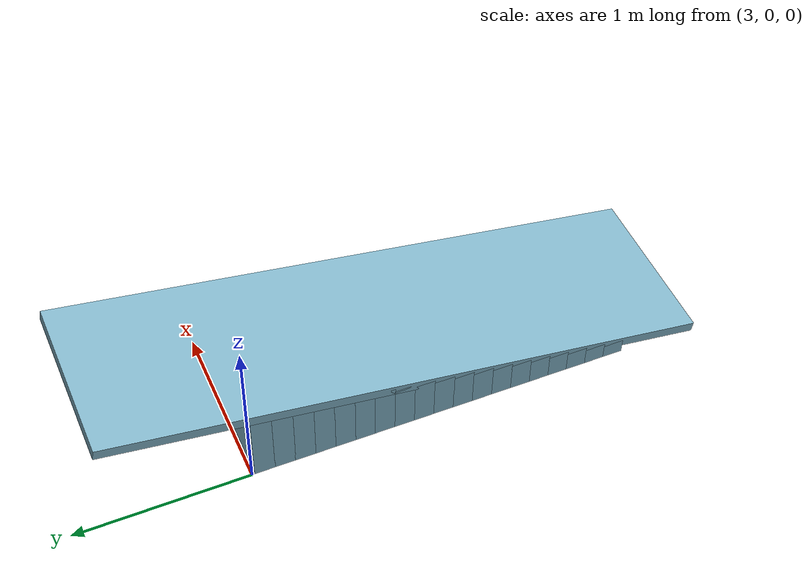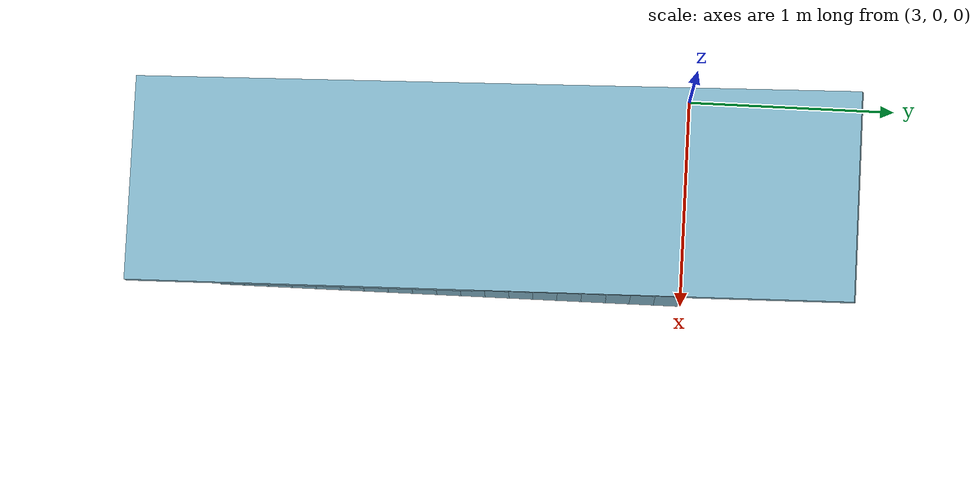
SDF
<sdf version="1.7">
 <world name="robocon2027_arena">
  <model name="ramp_blue">
   <static>1</static>
   <pose>3.5 -0.95 0.3 0 -0.169778 1.5708</pose>
   <link name="link">
    <collision name="col"><geometry><box><size>3.55 1 0.06</size></box></geometry></collision>
    <visual name="vis">
     <geometry><box><size>3.55 1 0.06</size></box></geometry>
     <material>
      <ambient>0.51 0.706 0.784 1</ambient>
      <diffuse>0.51 0.706 0.784 1</diffuse>
      <specular>0.04 0.04 0.04 1</specular>
      <emissive>0 0 0 1</emissive>
     </material>
    </visual>
   </link>
  </model>
  <model name="rampsup_blue_4">
   <static>1</static>
   <pose>3.5 -2.175 0.045 0 -0 0</pose>
   <link name="link">
    <collision name="col"><geometry><box><size>1 0.118667 0.09</size></box></geometry></collision>
    <visual name="vis">
     <geometry><box><size>1 0.118667 0.09</size></box></geometry>
     <material>
      <ambient>0.51 0.706 0.784 1</ambient>
      <diffuse>0.51 0.706 0.784 1</diffuse>
      <specular>0.04 0.04 0.04 1</specular>
      <emissive>0 0 0 1</emissive>
     </material>
    </visual>
   </link>
  </model>
  <model name="rampsup_blue_5">
   <static>1</static>
   <pose>3.5 -2.0583 0.055 0 -0 0</pose>
   <link name="link">
    <collision name="col"><geometry><box><size>1 0.118667 0.11</size></box></geometry></collision>
    <visual name="vis">
     <geometry><box><size>1 0.118667 0.11</size></box></geometry>
     <material>
      <ambient>0.51 0.706 0.784 1</ambient>
      <diffuse>0.51 0.706 0.784 1</diffuse>
      <specular>0.04 0.04 0.04 1</specular>
      <emissive>0 0 0 1</emissive>
     </material>
    </visual>
   </link>
  </model>
  <model name="rampsup_blue_6">
   <static>1</static>
   <pose>3.5 -1.9417 0.065 0 -0 0</pose>
   <link name="link">
    <collision name="col"><geometry><box><size>1 0.118667 0.13</size></box></geometry></collision>
    <visual name="vis">
     <geometry><box><size>1 0.118667 0.13</size></box></geometry>
     <material>
      <ambient>0.51 0.706 0.784 1</ambient>
      <diffuse>0.51 0.706 0.784 1</diffuse>
      <specular>0.04 0.04 0.04 1</specular>
      <emissive>0 0 0 1</emissive>
     </material>
    </visual>
   </link>
  </model>
  <model name="rampsup_blue_7">
   <static>1</static>
   <pose>3.5 -1.825 0.075 0 -0 0</pose>
   <link name="link">
    <collision name="col"><geometry><box><size>1 0.118667 0.15</size></box></geometry></collision>
    <visual name="vis">
     <geometry><box><size>1 0.118667 0.15</size></box></geometry>
     <material>
      <ambient>0.51 0.706 0.784 1</ambient>
      <diffuse>0.51 0.706 0.784 1</diffuse>
      <specular>0.04 0.04 0.04 1</specular>
      <emissive>0 0 0 1</emissive>
     </material>
    </visual>
   </link>
  </model>
  <model name="rampsup_blue_8">
   <static>1</static>
   <pose>3.5 -1.7083 0.085 0 -0 0</pose>
   <link name="link">
    <collision name="col"><geometry><box><size>1 0.118667 0.17</size></box></geometry></collision>
    <visual name="vis">
     <geometry><box><size>1 0.118667 0.17</size></box></geometry>
     <material>
      <ambient>0.51 0.706 0.784 1</ambient>
      <diffuse>0.51 0.706 0.784 1</diffuse>
      <specular>0.04 0.04 0.04 1</specular>
      <emissive>0 0 0 1</emissive>
     </material>
    </visual>
   </link>
  </model>
  <model name="rampsup_blue_9">
   <static>1</static>
   <pose>3.5 -1.5917 0.095 0 -0 0</pose>
   <link name="link">
    <collision name="col"><geometry><box><size>1 0.118667 0.19</size></box></geometry></collision>
    <visual name="vis">
     <geometry><box><size>1 0.118667 0.19</size></box></geometry>
     <material>
      <ambient>0.51 0.706 0.784 1</ambient>
      <diffuse>0.51 0.706 0.784 1</diffuse>
      <specular>0.04 0.04 0.04 1</specular>
      <emissive>0 0 0 1</emissive>
     </material>
    </visual>
   </link>
  </model>
  <model name="rampsup_blue_10">
   <static>1</static>
   <pose>3.5 -1.475 0.105 0 -0 0</pose>
   <link name="link">
    <collision name="col"><geometry><box><size>1 0.118667 0.21</size></box></geometry></collision>
    <visual name="vis">
     <geometry><box><size>1 0.118667 0.21</size></box></geometry>
     <material>
      <ambient>0.51 0.706 0.784 1</ambient>
      <diffuse>0.51 0.706 0.784 1</diffuse>
      <specular>0.04 0.04 0.04 1</specular>
      <emissive>0 0 0 1</emissive>
     </material>
    </visual>
   </link>
  </model>
  <model name="rampsup_blue_11">
   <static>1</static>
   <pose>3.5 -1.3583 0.115 0 -0 0</pose>
   <link name="link">
    <collision name="col"><geometry><box><size>1 0.118667 0.23</size></box></geometry></collision>
    <visual name="vis">
     <geometry><box><size>1 0.118667 0.23</size></box></geometry>
     <material>
      <ambient>0.51 0.706 0.784 1</ambient>
      <diffuse>0.51 0.706 0.784 1</diffuse>
      <specular>0.04 0.04 0.04 1</specular>
      <emissive>0 0 0 1</emissive>
     </material>
    </visual>
   </link>
  </model>
  <model name="rampsup_blue_12">
   <static>1</static>
   <pose>3.5 -1.2417 0.125 0 -0 0</pose>
   <link name="link">
    <collision name="col"><geometry><box><size>1 0.118667 0.25</size></box></geometry></collision>
    <visual name="vis">
     <geometry><box><size>1 0.118667 0.25</size></box></geometry>
     <material>
      <ambient>0.51 0.706 0.784 1</ambient>
      <diffuse>0.51 0.706 0.784 1</diffuse>
      <specular>0.04 0.04 0.04 1</specular>
      <emissive>0 0 0 1</emissive>
     </material>
    </visual>
   </link>
  </model>
  <model name="rampsup_blue_13">
   <static>1</static>
   <pose>3.5 -1.125 0.135 0 -0 0</pose>
   <link name="link">
    <collision name="col"><geometry><box><size>1 0.118667 0.27</size></box></geometry></collision>
    <visual name="vis">
     <geometry><box><size>1 0.118667 0.27</size></box></geometry>
     <material>
      <ambient>0.51 0.706 0.784 1</ambient>
      <diffuse>0.51 0.706 0.784 1</diffuse>
      <specular>0.04 0.04 0.04 1</specular>
      <emissive>0 0 0 1</emissive>
     </material>
    </visual>
   </link>
  </model>
  <model name="rampsup_blue_14">
   <static>1</static>
   <pose>3.5 -1.0083 0.145 0 -0 0</pose>
   <link name="link">
    <collision name="col"><geometry><box><size>1 0.118667 0.29</size></box></geometry></collision>
    <visual name="vis">
     <geometry><box><size>1 0.118667 0.29</size></box></geometry>
     <material>
      <ambient>0.51 0.706 0.784 1</ambient>
      <diffuse>0.51 0.706 0.784 1</diffuse>
      <specular>0.04 0.04 0.04 1</specular>
      <emissive>0 0 0 1</emissive>
     </material>
    </visual>
   </link>
  </model>
  <model name="rampsup_blue_15">
   <static>1</static>
   <pose>3.5 -0.8917 0.155 0 -0 0</pose>
   <link name="link">
    <collision name="col"><geometry><box><size>1 0.118667 0.31</size></box></geometry></collision>
    <visual name="vis">
     <geometry><box><size>1 0.118667 0.31</size></box></geometry>
     <material>
      <ambient>0.51 0.706 0.784 1</ambient>
      <diffuse>0.51 0.706 0.784 1</diffuse>
      <specular>0.04 0.04 0.04 1</specular>
      <emissive>0 0 0 1</emissive>
     </material>
    </visual>
   </link>
  </model>
  <model name="rampsup_blue_16">
   <static>1</static>
   <pose>3.5 -0.775 0.165 0 -0 0</pose>
   <link name="link">
    <collision name="col"><geometry><box><size>1 0.118667 0.33</size></box></geometry></collision>
    <visual name="vis">
     <geometry><box><size>1 0.118667 0.33</size></box></geometry>
     <material>
      <ambient>0.51 0.706 0.784 1</ambient>
      <diffuse>0.51 0.706 0.784 1</diffuse>
      <specular>0.04 0.04 0.04 1</specular>
      <emissive>0 0 0 1</emissive>
     </material>
    </visual>
   </link>
  </model>
  <model name="rampsup_blue_17">
   <static>1</static>
   <pose>3.5 -0.6583 0.175 0 -0 0</pose>
   <link name="link">
    <collision name="col"><geometry><box><size>1 0.118667 0.35</size></box></geometry></collision>
    <visual name="vis">
     <geometry><box><size>1 0.118667 0.35</size></box></geometry>
     <material>
      <ambient>0.51 0.706 0.784 1</ambient>
      <diffuse>0.51 0.706 0.784 1</diffuse>
      <specular>0.04 0.04 0.04 1</specular>
      <emissive>0 0 0 1</emissive>
     </material>
    </visual>
   </link>
  </model>
  <model name="rampsup_blue_18">
   <static>1</static>
   <pose>3.5 -0.5417 0.185 0 -0 0</pose>
   <link name="link">
    <collision name="col"><geometry><box><size>1 0.118667 0.37</size></box></geometry></collision>
    <visual name="vis">
     <geometry><box><size>1 0.118667 0.37</size></box></geometry>
     <material>
      <ambient>0.51 0.706 0.784 1</ambient>
      <diffuse>0.51 0.706 0.784 1</diffuse>
      <specular>0.04 0.04 0.04 1</specular>
      <emissive>0 0 0 1</emissive>
     </material>
    </visual>
   </link>
  </model>
  <model name="rampsup_blue_19">
   <static>1</static>
   <pose>3.5 -0.425 0.195 0 -0 0</pose>
   <link name="link">
    <collision name="col"><geometry><box><size>1 0.118667 0.39</size></box></geometry></collision>
    <visual name="vis">
     <geometry><box><size>1 0.118667 0.39</size></box></geometry>
     <material>
      <ambient>0.51 0.706 0.784 1</ambient>
      <diffuse>0.51 0.706 0.784 1</diffuse>
      <specular>0.04 0.04 0.04 1</specular>
      <emissive>0 0 0 1</emissive>
     </material>
    </visual>
   </link>
  </model>
  <model name="rampsup_blue_20">
   <static>1</static>
   <pose>3.5 -0.3083 0.205 0 -0 0</pose>
   <link name="link">
    <collision name="col"><geometry><box><size>1 0.118667 0.41</size></box></geometry></collision>
    <visual name="vis">
     <geometry><box><size>1 0.118667 0.41</size></box></geometry>
     <material>
      <ambient>0.51 0.706 0.784 1</ambient>
      <diffuse>0.51 0.706 0.784 1</diffuse>
      <specular>0.04 0.04 0.04 1</specular>
      <emissive>0 0 0 1</emissive>
     </material>
    </visual>
   </link>
  </model>
  <model name="rampsup_blue_21">
   <static>1</static>
   <pose>3.5 -0.1917 0.215 0 -0 0</pose>
   <link name="link">
    <collision name="col"><geometry><box><size>1 0.118667 0.43</size></box></geometry></collision>
    <visual name="vis">
     <geometry><box><size>1 0.118667 0.43</size></box></geometry>
     <material>
      <ambient>0.51 0.706 0.784 1</ambient>
      <diffuse>0.51 0.706 0.784 1</diffuse>
      <specular>0.04 0.04 0.04 1</specular>
      <emissive>0 0 0 1</emissive>
     </material>
    </visual>
   </link>
  </model>
  <model name="rampsup_blue_22">
   <static>1</static>
   <pose>3.5 -0.075 0.225 0 -0 0</pose>
   <link name="link">
    <collision name="col"><geometry><box><size>1 0.118667 0.45</size></box></geometry></collision>
    <visual name="vis">
     <geometry><box><size>1 0.118667 0.45</size></box></geometry>
     <material>
      <ambient>0.51 0.706 0.784 1</ambient>
      <diffuse>0.51 0.706 0.784 1</diffuse>
      <specular>0.04 0.04 0.04 1</specular>
      <emissive>0 0 0 1</emissive>
     </material>
    </visual>
   </link>
  </model>
 </world>
</sdf>
